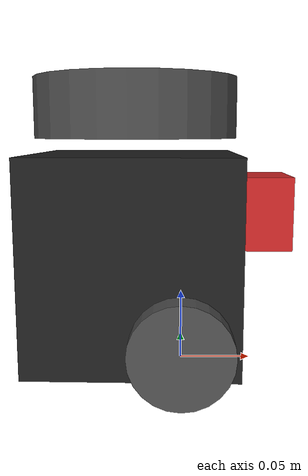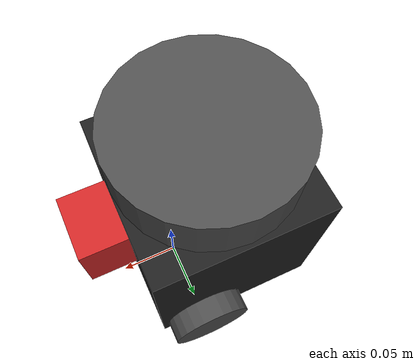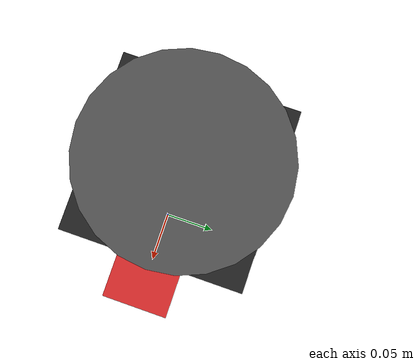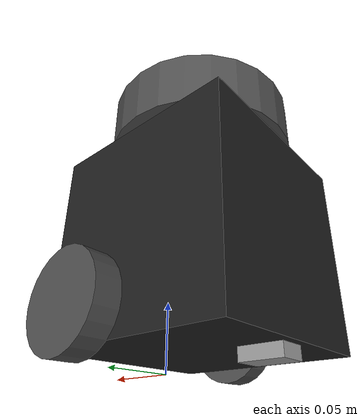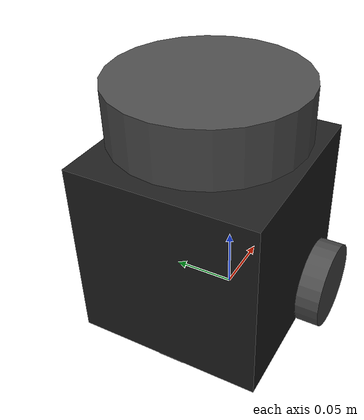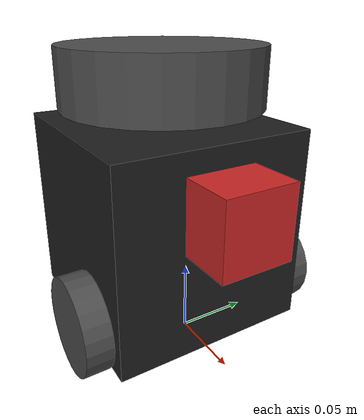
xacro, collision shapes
<?xml version="1.0" ?>
<robot name="turtlebot3_burger" xmlns:xacro="http://ros.org/wiki/xacro">
  <xacro:include filename="$(find turtlebot3_description)/urdf/common_properties.xacro"/>
  <xacro:include filename="$(find turtlebot3_description)/urdf/turtlebot3_burger.gazebo.xacro"/>

  <link name="base_footprint"/>

  <joint name="base_joint" type="fixed">
    <parent link="base_footprint"/>
    <child link="base_link"/>
    <origin xyz="0.0 0.0 0.010" rpy="0 0 0"/>
  </joint>

  <link name="base_link">
    <visual>
      <origin xyz="-0.032 0 0.0" rpy="0 0 0"/>
      <geometry>
        <mesh filename="package://turtlebot3_description/meshes/bases/burger_base.stl" scale="0.001 0.001 0.001"/>
      </geometry>
      <material name="light_black"/>
    </visual>

    <collision>
      <origin xyz="-0.032 0 0.070" rpy="0 0 0"/>
      <geometry>
        <box size="0.140 0.140 0.140"/>
      </geometry>
    </collision>

    <inertial>
      <origin xyz="-0.032 0 0" rpy="0 0 0"/>
      <mass value="1"/>
      <inertia ixx="0.01" ixy="0.0" ixz="0.0"
               iyy="0.01" iyz="0.0"
               izz="0.01" />
    </inertial>
  </link>

  <joint name="wheel_left_joint" type="continuous">
    <parent link="base_link"/>
    <child link="wheel_left_link"/>
    <origin xyz="0.0 0.08 0.023" rpy="${-M_PI*0.5} 0 0"/>
    <axis xyz="0 0 1"/>
  </joint>

  <link name="wheel_left_link">
    <visual>
      <origin xyz="0 0 0" rpy="${M_PI*0.5} 0 0"/>
      <geometry>
        <mesh filename="package://turtlebot3_description/meshes/wheels/left_tire.stl" scale="0.001 0.001 0.001"/>
      </geometry>
      <material name="dark"/>
    </visual>

    <collision>
      <origin xyz="0 0 0" rpy="0 0 0"/>
      <geometry>
        <cylinder length="0.018" radius="0.033"/>
      </geometry>
    </collision>

    <inertial>
      <origin xyz="0 0 0" />
      <mass value="0.01" />
      <inertia ixx="0.001" ixy="0.0" ixz="0.0"
               iyy="0.001" iyz="0.0"
               izz="0.001" />
    </inertial>
  </link>

  <joint name="wheel_right_joint" type="continuous">
    <parent link="base_link"/>
    <child link="wheel_right_link"/>
    <origin xyz="0.0 -0.08 0.023" rpy="${-M_PI*0.5} 0 0"/>
    <axis xyz="0 0 1"/>
  </joint>

  <link name="wheel_right_link">
    <visual>
      <origin xyz="0 0 0" rpy="${M_PI*0.5} 0 0"/>
      <geometry>
        <mesh filename="package://turtlebot3_description/meshes/wheels/right_tire.stl" scale="0.001 0.001 0.001"/>
      </geometry>
      <material name="dark"/>
    </visual>

    <collision>
      <origin xyz="0 0 0" rpy="0 0 0"/>
      <geometry>
        <cylinder length="0.018" radius="0.033"/>
      </geometry>
    </collision>

    <inertial>
      <origin xyz="0 0 0" />
      <mass value="0.01" />
      <inertia ixx="0.001" ixy="0.0" ixz="0.0"
               iyy="0.001" iyz="0.0"
               izz="0.001" />
    </inertial>
  </link>

  <joint name="caster_back_joint" type="fixed">
    <parent link="base_link"/>
    <child link="caster_back_link"/>
    <origin xyz="-0.081 0 -0.004" rpy="${-M_PI*0.5} 0 0"/>
  </joint>

  <link name="caster_back_link">
    <collision>
      <origin xyz="0 0 0" rpy="0 0 0"/>
      <geometry>
        <box size="0.030 0.010 0.020"/>
      </geometry>
    </collision>

    <inertial>
      <origin xyz="0 0 0" />
      <mass value="0.01" />
      <inertia ixx="0.001" ixy="0.0" ixz="0.0"
               iyy="0.001" iyz="0.0"
               izz="0.001" />
    </inertial>
  </link>

  <joint name="imu_joint" type="fixed">
    <parent link="base_link"/>
    <child link="imu_link"/>
    <origin xyz="-0.032 0 0.068" rpy="0 0 0"/>
  </joint>

  <link name="imu_link"/>

  <joint name="scan_joint" type="fixed">
    <parent link="base_link"/>
    <child link="base_scan"/>
    <origin xyz="-0.032 0 0.171" rpy="0 0 0"/>
  </joint>

  <link name="base_scan">
    <visual>
      <origin xyz="0 0 0.0" rpy="0 0 0"/>
      <geometry>
        <mesh filename="package://turtlebot3_description/meshes/sensors/lds.stl" scale="0.001 0.001 0.001"/>
      </geometry>
      <material name="dark"/>
    </visual>

    <collision>
      <origin xyz="0 0 0" rpy="0 0 0"/>
      <geometry>
        <cylinder length="0.0408" radius="0.070"/>
      </geometry>
    </collision>

    <inertial>
      <mass value="0.01" />
      <origin xyz="0 0 0" />
      <inertia ixx="0.001" ixy="0.0" ixz="0.0"
               iyy="0.001" iyz="0.0"
               izz="0.001" />
    </inertial>
  </link>

  <!-- Camera -->

<joint name="camera_joint" type="fixed">
    <axis xyz="0 1 0" />
    <origin xyz="0.05 0 0.1" rpy="0 0 0"/>
    <parent link="base_link"/>
    <child link="camera_link"/>
  </joint>

  <link name="camera_link">
    <collision>
      <origin xyz="0 0 0" rpy="0 0 0"/>
      <geometry>
    <box size="0.05 0.05 0.05"/>
      </geometry>
    </collision>

    <visual>
      <origin xyz="-0.005 -0.049 0" rpy="${M_PI*0.5} 0 ${M_PI*0.5}"/>
      <geometry>
    <mesh filename="package://turtlebot3_description/meshes/sensors/r200.dae" />
      </geometry>
      <material name="red"/>
    </visual>

    <inertial>
      <mass value="1e-5" />
      <origin xyz="0 0 0" rpy="0 0 0"/>
      <inertia ixx="1e-6" ixy="0" ixz="0" iyy="1e-6" iyz="0" izz="1e-6" />
    </inertial>
  </link>

 <!-- IR Sensor -->

 <joint name="scan_IR_joint" type="fixed">
    <parent link="base_link"/>
    <child link="base_scan_IR"/>
    <origin xyz="-0.032 0 0.171" rpy="0 0 0"/>
  </joint>

 <link name="base_scan_IR">
    <visual>
      <origin xyz="0 0 0.0" rpy="0 0 0"/>
      <geometry>
        <mesh filename="package://turtlebot3_description/meshes/sensors/lds.stl" scale="0.001 0.001 0.001"/>
      </geometry>
      <material name="dark"/>
    </visual>

    <collision>
      <origin xyz="0 0 0" rpy="0 0 0"/>
      <geometry>
        <cylinder length="0.0408" radius="0.070"/>
      </geometry>
    </collision>

    <inertial>
      <mass value="0.01" />
      <origin xyz="0 0 0" />
      <inertia ixx="0.001" ixy="0.0" ixz="0.0"
               iyy="0.001" iyz="0.0"
               izz="0.001" />
    </inertial>
  </link>

</robot>
